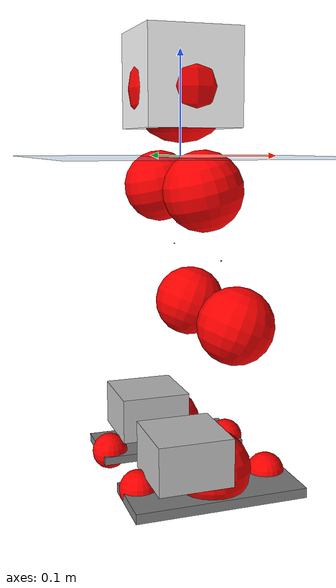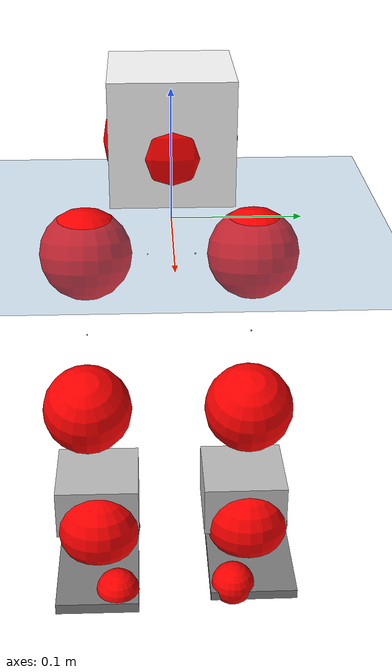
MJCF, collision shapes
<mujoco model="pi_12dof_release_v1">
  <compiler angle="radian" assetdir="assets" balanceinertia="true" inertiafromgeom="false"/>

  <option timestep="0.005" density="1.2" viscosity="2e-05"/>

  <size nkey="1"/>

  <visual>
    <quality shadowsize="8192"/>
    <map shadowclip="0.5"/>
  </visual>

  <default>
    <default class="/">
      <joint armature="0.01" damping="0.01" frictionloss="0.01"/>
      <geom contype="0" conaffinity="0" group="1" solref="-1000 -80"/>
      <site size="0.01 0.005 0.005" group="5"/>
      <general forcelimited="true" biastype="affine" gainprm="20" biasprm="0 -20 -0.5"/>
      <default class="foot">
        <geom size="0.0845 0.036 0.005" type="box" condim="6" group="4" priority="1" friction="0.9 0.2 0.2" solimp="0.015 1 0.005"/>
      </default>
      <default class="reward_collision_sphere">
        <geom group="5" rgba="1 0 0 1"/>
      </default>
    </default>
  </default>

  <asset>
    <texture type="skybox" colorspace="auto" name="//unnamed_texture_0" builtin="gradient" rgb1="0.95 0.95 0.95" rgb2="0.95 0.95 0.95" width="100" height="600"/>
    <texture type="2d" colorspace="auto" name="texplane" builtin="checker" rgb1="0.345 0.575 0.748" rgb2="0.345 0.575 0.748" markrgb="1 1 1" width="512" height="512"/>
    <material name="MatPlane" class="/" texture="texplane" texuniform="true" texrepeat="2 2" specular="0.9"/>
    <mesh name="baselink_1" class="/" file="baselink_1.STL"/>
    <mesh name="r_hip_pitch_link" class="/" file="r_hip_pitch_link.STL"/>
    <mesh name="r_hip_roll_link" class="/" file="r_hip_roll_link.STL"/>
    <mesh name="r_thigh_link" class="/" file="r_thigh_link.STL"/>
    <mesh name="r_calf_link" class="/" file="r_calf_link.STL"/>
    <mesh name="r_ankle_pitch_link" class="/" file="r_ankle_pitch_link.STL"/>
    <mesh name="r_ankle_roll_link" class="/" file="r_ankle_roll_link.STL"/>
    <mesh name="l_hip_pitch_link" class="/" file="l_hip_pitch_link.STL"/>
    <mesh name="l_hip_roll_link" class="/" file="l_hip_roll_link.STL"/>
    <mesh name="l_thigh_link" class="/" file="l_thigh_link.STL"/>
    <mesh name="l_calf_link" class="/" file="l_calf_link.STL"/>
    <mesh name="l_ankle_pitch_link" class="/" file="l_ankle_pitch_link.STL"/>
    <mesh name="l_ankle_roll_link" class="/" file="l_ankle_roll_link.STL"/>
  </asset>

  <worldbody>
    <geom name="floor" class="/" size="100 100 0.125" type="plane" group="0" material="MatPlane"/>
    <light name="toplight_shadow" class="/" pos="0 0 5" dir="0.0990148 0.0990148 -0.990148" type="directional" ambient="0.04 0.04 0.04" diffuse="0.55 0.55 0.55" specular="0.12 0.12 0.12"/>
    <light name="toplight_fill" class="/" pos="0 0 5" dir="0.0990148 0.0990148 -0.990148" type="directional" castshadow="false" ambient="0.04 0.04 0.04" diffuse="0.3 0.3 0.3" specular="0.08 0.08 0.08"/>
    <body name="trunk" pos="0.000507243 -0.000216653 -0.000840378" quat="1 9.22279e-05 1.64577e-05 0.000146136">
      <inertial pos="0.000762791 -0.00287726 0.035821" quat="0.695287 0.0130754 0.0132843 0.718491" mass="1.59781" diaginertia="0.00802969 0.00423902 0.00258146"/>
      <joint name="//unnamed_joint_0" type="free"/>
      <geom name="//unnamed_geom_1" class="/" type="mesh" density="0" rgba="1 1 1 1" mesh="baselink_1"/>
      <geom name="//unnamed_geom_2" class="/" size="0.0453182 0.0453182 0.0453182" pos="0 0 0.0724303" type="box" rgba="1 1 1 1"/>
      <geom name="//unnamed_geom_3" class="reward_collision_sphere" size="0.0498501" pos="0 0 0.0633765"/>
      <site name="imu" class="/" pos="-0.0124815 -0.00033829 0.0100241" size="0.00906365"/>
      <camera name="track" class="/" pos="0 -1.71142 0" quat="0.707107 0.707107 0 0" mode="trackcom"/>
      <camera name="ego_camera" class="/" pos="0.0718505 0 0.162968" quat="-0.5 -0.5 0.5 0.5"/>
      <body name="r_hip_pitch_link" pos="-0.00165708 -0.0184131 -0.0297457" quat="0.992194 6.41701e-05 -0.124706 -8.21344e-05">
        <inertial pos="0.00312671 -0.0479032 -0.000245579" quat="-0.0196965 0.706255 -0.0285941 0.707105" mass="0.267005" diaginertia="8.47804e-05 4.50011e-05 4.96863e-05"/>
        <joint name="r_hip_pitch_joint" class="/" pos="0 0 0" axis="0.00118882 -0.999961 0.00875952" stiffness="0.00934589" range="-1.74811 1.20381" armature="0.00935621" damping="0" frictionloss="0.00952816"/>
        <geom name="//unnamed_geom_4" class="/" type="mesh" density="0" rgba="0.75294 0.75294 0.75294 1" mesh="r_hip_pitch_link"/>
        <geom name="//unnamed_geom_5" class="/" size="0.000453182 0.000453182 0.000453182" type="box" rgba="0.75294 0.75294 0.75294 1"/>
        <body name="r_hip_roll_link" pos="0.000435354 -0.0484125 0.00106564" quat="1 -1.80226e-05 0.000163917 -7.50133e-05">
          <inertial pos="-0.00178196 7.01756e-05 -0.0536409" quat="0.706123 -0.0772925 -0.0871091 0.698447" mass="0.292264" diaginertia="0.000264119 0.000128597 7.89933e-05"/>
          <joint name="r_hip_roll_joint" class="/" pos="0 0 0" axis="-0.999931 -0.011522 -0.0023939" stiffness="0.00231218" range="-0.162319 0.477673" armature="0.00946105" damping="0.00711714" frictionloss="0.00956776"/>
          <geom name="//unnamed_geom_6" class="/" type="mesh" density="0" rgba="0.75294 0.75294 0.75294 1" mesh="r_hip_roll_link"/>
          <geom name="//unnamed_geom_7" class="/" size="0.000453182 0.000453182 0.000453182" type="box" rgba="0.75294 0.75294 0.75294 1"/>
          <geom name="//unnamed_geom_8" class="reward_collision_sphere" size="0.0362546"/>
          <body name="r_thigh_link" pos="0.0010021 -0.000812142 -0.0648378" quat="1 -0.000329023 -0.000508774 -0.000505799">
            <inertial pos="0.000681744 0.000644666 -0.0421166" quat="0.740179 0.672408 -0.000604359 -0.00156503" mass="0.0837265" diaginertia="0.000101131 4.32324e-05 3.56067e-05"/>
            <joint name="r_thigh_joint" class="/" pos="0 0 0" axis="0.00243647 0.00508577 -0.999984" range="-0.321495 0.576773" armature="0.00876002" damping="0.0015128" frictionloss="0.00897864"/>
            <geom name="//unnamed_geom_9" class="/" type="mesh" density="0" rgba="0.75294 0.75294 0.75294 1" mesh="r_thigh_link"/>
            <geom name="//unnamed_geom_10" class="/" size="0.000453182 0.000453182 0.000453182" type="box" rgba="0.75294 0.75294 0.75294 1"/>
            <body name="r_calf_link" pos="-0.00133329 -0.00151775 -0.0622275" quat="0.947623 0.000202212 0.319392 -0.000188555">
              <inertial pos="0.001547 -0.000924188 -0.0628691" quat="0.999976 -0.00339519 -0.000671706 0.00592392" mass="0.615263" diaginertia="0.00287927 0.00161269 0.000106512"/>
              <joint name="r_calf_joint" class="/" pos="0 0 0" axis="0.000207687 -1 0.000199668" range="-1.66311 0.645758" armature="0.00877158" damping="0.0109709" frictionloss="0.00926666"/>
              <geom name="//unnamed_geom_11" class="/" type="mesh" density="0" rgba="0.75294 0.75294 0.75294 1" mesh="r_calf_link"/>
              <geom name="//unnamed_geom_12" class="/" size="0.000453182 0.000453182 0.000453182" type="box" rgba="0.75294 0.75294 0.75294 1"/>
              <geom name="//unnamed_geom_13" class="reward_collision_sphere" size="0.0362546"/>
              <body name="r_ankle_pitch_link" pos="0.00068905 0.00300542 -0.126886" quat="0.980066 2.75158e-06 -0.198673 -6.1284e-06">
                <inertial pos="0.00454693 0.00290388 -0.000821964" quat="-0.00122164 0.70665 -0.0110096 0.707476" mass="0.125141" diaginertia="0.000245712 0.000100647 7.11743e-05"/>
                <joint name="r_ankle_pitch_joint" class="/" pos="0 0 0" axis="-0.00300966 -0.999978 -0.00586303" range="-1.27872 0.489448" armature="0.00927342" damping="0" frictionloss="0.0091176"/>
                <geom name="//unnamed_geom_14" class="/" type="mesh" density="0" rgba="0.75294 0.75294 0.75294 1" mesh="r_ankle_pitch_link"/>
                <geom name="//unnamed_geom_15" class="/" size="0.0353482 0.0362546 0.0226591" type="box" rgba="0.75294 0.75294 0.75294 1"/>
                <body name="r_ankle_roll_link" pos="0.0756202 0.00101603 -0.000423087" quat="1 0.000114618 -5.36789e-05 0.000120613">
                  <inertial pos="-0.0229084 0.000106713 -0.0109756" quat="0.560113 0.430543 0.434306 0.558825" mass="0.386406" diaginertia="0.000884718 0.000463908 0.000173296"/>
                  <joint name="r_ankle_roll_joint" class="/" pos="0 0 0" axis="-0.999993 -0.00377923 -0.000581272" stiffness="0.000404783" range="-0.165962 0.133415" armature="0.00851115" damping="0" frictionloss="0.00991323"/>
                  <geom name="//unnamed_geom_16" class="/" type="mesh" density="0" rgba="0.75294 0.75294 0.75294 1" mesh="r_ankle_roll_link"/>
                  <geom name="//unnamed_geom_17" class="/" type="mesh" rgba="0.75294 0.75294 0.75294 1" mesh="r_ankle_roll_link"/>
                  <geom name="right_foot" class="foot" size="0.0822327 0.0345723 0.0046645" pos="-0.0488583 0 -0.0398367"/>
                  <geom name="//unnamed_geom_19" class="reward_collision_sphere" size="0.0362546" pos="-0.0479003 0 -0.0181076"/>
                  <geom name="//unnamed_geom_20" class="reward_collision_sphere" size="0.0181273" pos="0.0143701 0.0171142 -0.0362152"/>
                  <geom name="//unnamed_geom_21" class="reward_collision_sphere" size="0.0181273" pos="-0.114961 0.0171142 -0.0362152"/>
                  <site name="right_foot" class="foot" pos="-0.0488583 0 -0.0398367" size="0.00906365"/>
                </body>
              </body>
            </body>
          </body>
        </body>
      </body>
      <body name="l_hip_pitch_link" pos="-0.0022233 0.0189826 -0.0297884" quat="0.992179 0.00023314 -0.124826 -0.000179977">
        <inertial pos="0.00028277 0.0479772 0.000155749" quat="-0.0374362 0.705658 0.0289045 0.706972" mass="0.287807" diaginertia="0.000102507 4.85566e-05 5.83797e-05"/>
        <joint name="l_hip_pitch_joint" class="/" pos="0 0 0" axis="0.00321155 0.999995 -0.000438051" stiffness="0.00166813" range="-1.28844 1.73826" armature="0.0101388" damping="0.000608062" frictionloss="0.00923796"/>
        <geom name="//unnamed_geom_22" class="/" type="mesh" density="0" rgba="0.75294 0.75294 0.75294 1" mesh="l_hip_pitch_link"/>
        <geom name="//unnamed_geom_23" class="/" size="0.000453182 0.000453182 0.000453182" type="box" rgba="0.75294 0.75294 0.75294 1"/>
        <body name="l_hip_roll_link" pos="0.000305206 0.0454908 -9.21541e-05" quat="1 -8.01557e-05 2.19165e-06 0.000117636">
          <inertial pos="-0.000824032 0.00141887 -0.0548754" quat="0.700222 -0.0729173 -0.0786404 0.705824" mass="0.288957" diaginertia="0.000269521 0.00012703 7.71934e-05"/>
          <joint name="l_hip_roll_joint" class="/" pos="0 0 0" axis="-0.999908 0.000523921 -0.0135696" range="-0.450929 0.123617" armature="0.00900543" damping="0.00908582" frictionloss="0.00815577"/>
          <geom name="//unnamed_geom_24" class="/" type="mesh" density="0" rgba="0.75294 0.75294 0.75294 1" mesh="l_hip_roll_link"/>
          <geom name="//unnamed_geom_25" class="/" size="0.000453182 0.000453182 0.000453182" type="box" rgba="0.75294 0.75294 0.75294 1"/>
          <geom name="//unnamed_geom_26" class="reward_collision_sphere" size="0.0362546"/>
          <body name="l_thigh_link" pos="-7.36457e-05 -0.00114107 -0.0628417" quat="1 0.000216736 -9.26186e-05 0.00039749">
            <inertial pos="0.000391622 -0.00141499 -0.0439886" quat="0.677437 0.735474 -0.00951153 0.00810923" mass="0.0837848" diaginertia="0.000101268 4.34523e-05 3.40415e-05"/>
            <joint name="l_thigh_joint" class="/" pos="0 0 0" axis="-0.00545902 0.00178361 -0.999984" range="-0.606286 0.301519" armature="0.0088891" damping="0" frictionloss="0.00924931"/>
            <geom name="//unnamed_geom_27" class="/" type="mesh" density="0" rgba="0.75294 0.75294 0.75294 1" mesh="l_thigh_link"/>
            <geom name="//unnamed_geom_28" class="/" size="0.000453182 0.000453182 0.000453182" type="box" rgba="0.75294 0.75294 0.75294 1"/>
            <body name="l_calf_link" pos="0.000739613 -0.00162352 -0.0639922" quat="0.947581 0.000664725 0.319516 0.000314613">
              <inertial pos="-0.00194524 0.00290889 -0.0619182" quat="0.999951 0.00484185 0.0028621 0.00820515" mass="0.609772" diaginertia="0.00284694 0.00161152 0.00010349"/>
              <joint name="l_calf_joint" class="/" pos="0 0 0" axis="-0.00159207 0.999992 0.003628" range="-0.669344 1.6014" armature="0.0081931" damping="0.0061376" frictionloss="0.00813639"/>
              <geom name="//unnamed_geom_29" class="/" type="mesh" density="0" rgba="0.75294 0.75294 0.75294 1" mesh="l_calf_link"/>
              <geom name="//unnamed_geom_30" class="/" size="0.000453182 0.000453182 0.000453182" type="box" rgba="0.75294 0.75294 0.75294 1"/>
              <geom name="//unnamed_geom_31" class="reward_collision_sphere" size="0.0362546"/>
              <body name="l_ankle_pitch_link" pos="0.000943902 0.00179678 -0.124623" quat="0.980038 -0.000141187 -0.198811 0.000148955">
                <inertial pos="0.00578142 0.000177205 -0.000153255" quat="-0.00215099 0.70703 0.0028115 0.707175" mass="0.122962" diaginertia="0.000234844 9.88031e-05 6.9949e-05"/>
                <joint name="l_ankle_pitch_joint" class="/" pos="0 0 0" axis="-0.00384098 0.999983 -0.00441591" range="-0.50086 1.29325" armature="0.00919064" damping="0" frictionloss="0.0102275"/>
                <geom name="//unnamed_geom_32" class="/" type="mesh" density="0" rgba="0.75294 0.75294 0.75294 1" mesh="l_ankle_pitch_link"/>
                <geom name="//unnamed_geom_33" class="/" size="0.0353482 0.0362546 0.0226591" type="box" rgba="0.75294 0.75294 0.75294 1"/>
                <body name="l_ankle_roll_link" pos="0.069991 0.00238881 -0.000498121" quat="1 0.000163489 9.82828e-05 -0.000101219">
                  <inertial pos="-0.0227056 -0.00024258 -0.0128719" quat="0.562371 0.430598 0.426461 0.562544" mass="0.390245" diaginertia="0.000919952 0.000486358 0.000174167"/>
                  <joint name="l_ankle_roll_joint" class="/" pos="0 0 0" axis="-0.999995 -0.00146416 0.00275058" stiffness="0.00115949" range="-0.157489 0.151549" armature="0.00953586" damping="0.00901514" frictionloss="0.00797487"/>
                  <geom name="//unnamed_geom_34" class="/" type="mesh" density="0" rgba="0.75294 0.75294 0.75294 1" mesh="l_ankle_roll_link"/>
                  <geom name="//unnamed_geom_35" class="/" type="mesh" rgba="0.75294 0.75294 0.75294 1" mesh="l_ankle_roll_link"/>
                  <geom name="left_foot" class="foot" size="0.0757639 0.0363982 0.0040942" pos="-0.0488583 0 -0.0398367"/>
                  <geom name="//unnamed_geom_37" class="reward_collision_sphere" size="0.0362546" pos="-0.0479003 0 -0.0181076"/>
                  <geom name="//unnamed_geom_38" class="reward_collision_sphere" size="0.0181273" pos="0.0143701 -0.0171142 -0.0362152"/>
                  <geom name="//unnamed_geom_39" class="reward_collision_sphere" size="0.0181273" pos="-0.114961 -0.0171142 -0.0362152"/>
                  <site name="left_foot" class="foot" pos="-0.0488583 0 -0.0398367" size="0.00906365"/>
                </body>
              </body>
            </body>
          </body>
        </body>
      </body>
    </body>
  </worldbody>

  <contact>
    <pair class="/" geom1="floor" geom2="right_foot" name="//unnamed_contact_1"/>
    <pair class="/" geom1="floor" geom2="left_foot" name="//unnamed_contact_0"/>
  </contact>

  <actuator>
    <general name="r_hip_pitch_joint" class="/" joint="r_hip_pitch_joint" forcerange="-18.3415 18.3415" gainprm="18.1586" biasprm="0 -18.1586 -0.479339"/>
    <general name="r_hip_roll_joint" class="/" joint="r_hip_roll_joint" forcerange="-17.8259 17.8259" gainprm="18.1586" biasprm="0 -18.1586 -0.479339"/>
    <general name="r_thigh_joint" class="/" joint="r_thigh_joint" forcerange="-19.9626 19.9626" gainprm="18.1586" biasprm="0 -18.1586 -0.479339"/>
    <general name="r_calf_joint" class="/" joint="r_calf_joint" forcerange="-19.0573 19.0573" gainprm="18.1586" biasprm="0 -18.1586 -0.479339"/>
    <general name="r_ankle_pitch_joint" class="/" joint="r_ankle_pitch_joint" forcerange="-17.8278 17.8278" gainprm="18.1586" biasprm="0 -18.1586 -0.479339"/>
    <general name="r_ankle_roll_joint" class="/" joint="r_ankle_roll_joint" forcerange="-18.9056 18.9056" gainprm="18.1586" biasprm="0 -18.1586 -0.479339"/>
    <general name="l_hip_pitch_joint" class="/" joint="l_hip_pitch_joint" forcerange="-19.073 19.073" gainprm="18.1586" biasprm="0 -18.1586 -0.479339"/>
    <general name="l_hip_roll_joint" class="/" joint="l_hip_roll_joint" forcerange="-19.0565 19.0565" gainprm="18.1586" biasprm="0 -18.1586 -0.479339"/>
    <general name="l_thigh_joint" class="/" joint="l_thigh_joint" forcerange="-19.6442 19.6442" gainprm="18.1586" biasprm="0 -18.1586 -0.479339"/>
    <general name="l_calf_joint" class="/" joint="l_calf_joint" forcerange="-18.7936 18.7936" gainprm="18.1586" biasprm="0 -18.1586 -0.479339"/>
    <general name="l_ankle_pitch_joint" class="/" joint="l_ankle_pitch_joint" forcerange="-18.554 18.554" gainprm="18.1586" biasprm="0 -18.1586 -0.479339"/>
    <general name="l_ankle_roll_joint" class="/" joint="l_ankle_roll_joint" forcerange="-17.6308 17.6308" gainprm="18.1586" biasprm="0 -18.1586 -0.479339"/>
  </actuator>

  <sensor>
    <gyro site="imu" name="imu_angular_velocity"/>
    <velocimeter site="imu" name="imu_linear_velocity"/>
    <framelinvel objtype="site" objname="left_foot" name="left_foot_global_linear_velocity"/>
    <framelinvel objtype="site" objname="right_foot" name="right_foot_global_linear_velocity"/>
  </sensor>

  <keyframe>
    <key name="home" qpos="0 0 0.291 1 0 0 0 0.4 0 0 -0.8 0.4 0 -0.4 0 0 0.8 -0.4 0"/>
  </keyframe>
</mujoco>
